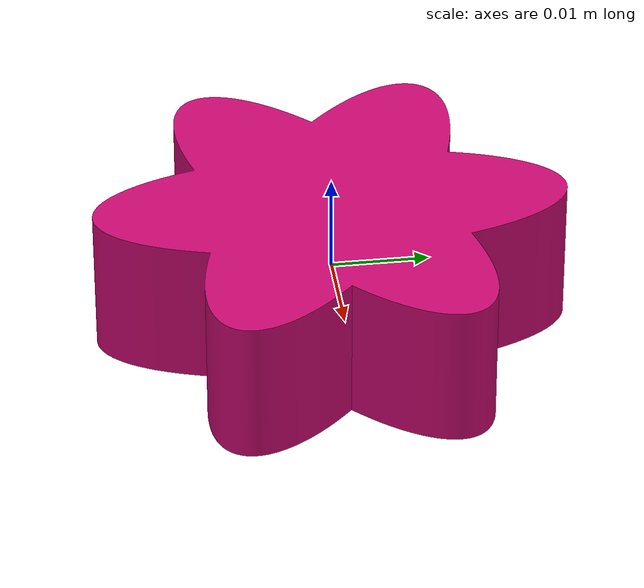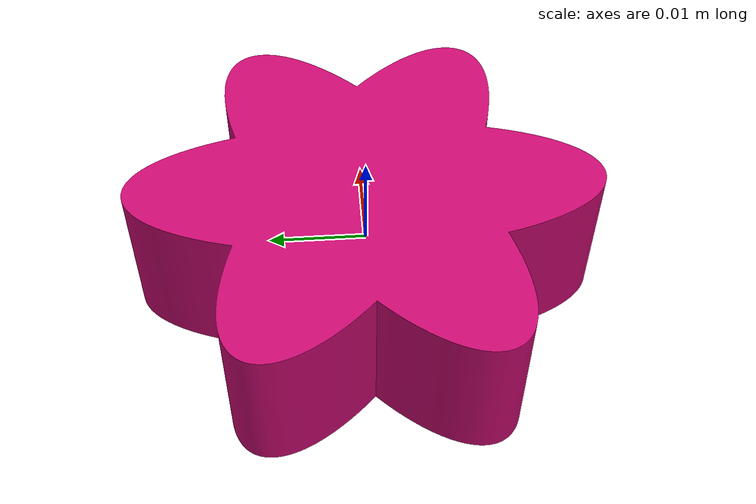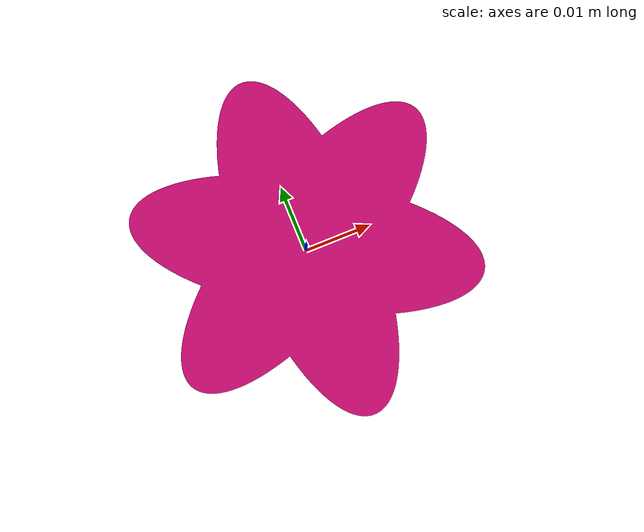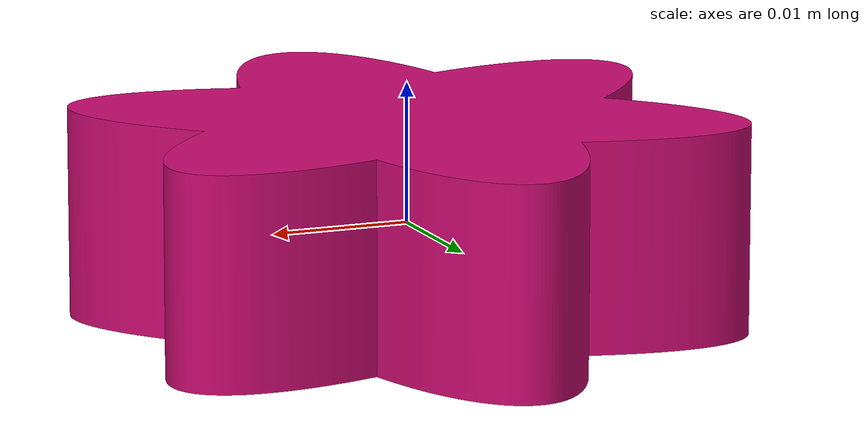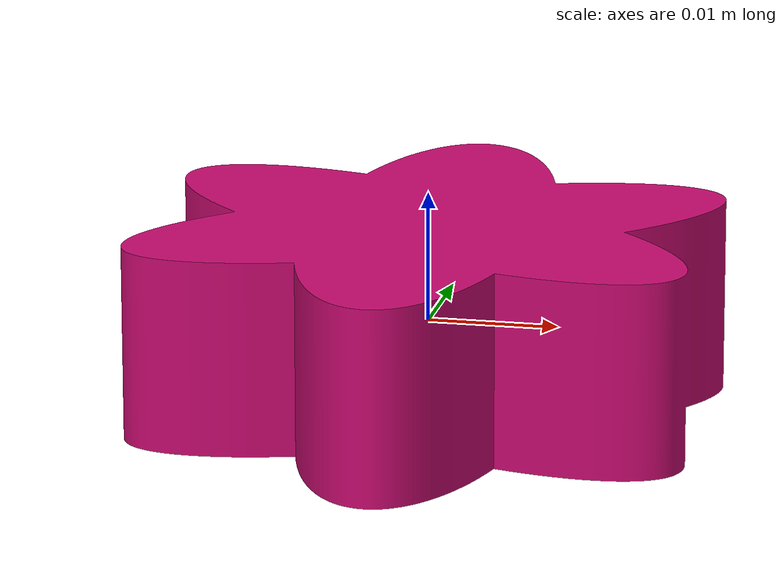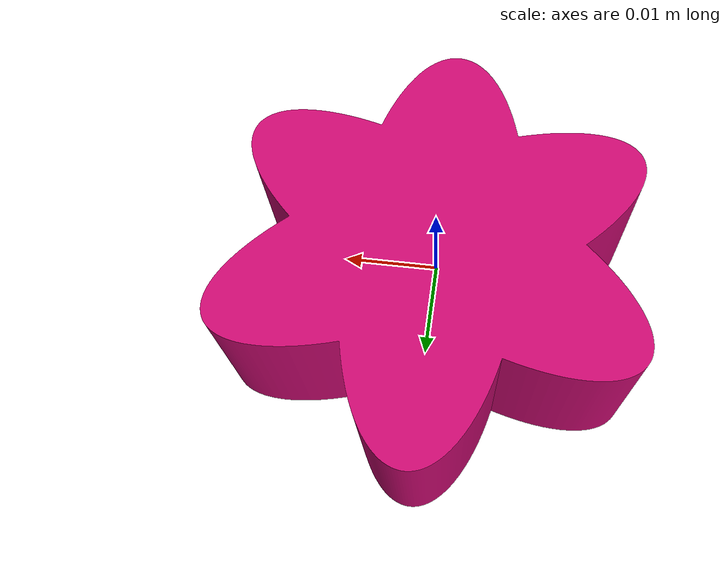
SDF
<?xml version="1.0" ?>
<sdf version="1.5">
  <model name="fleur_rose">
    <static>false</static>
    <link name="link">
      <pose>0 0 0 0 0 0</pose>
      <collision name="collision">
        <geometry>
          <mesh>
            <uri>model://fleur_rose/meshes/fleur_rose.dae</uri>
          </mesh>
        </geometry>
      </collision>
      <visual name="visual">
        <geometry>
          <mesh>
            <uri>model://fleur_rose/meshes/fleur_rose.dae</uri>
          </mesh>
        </geometry>
        <material>

        </material>
      </visual>
      <inertial>
        <mass>0.015</mass>
        <inertia> <!-- inertias are tricky to compute -->
          <!-- http://gazebosim.org/tutorials?tut=inertia&cat=build_robot -->
          <ixx>1.9e-6</ixx>       <!-- for a box: ixx = 0.083 * mass * (y*y + z*z) -->
          <ixy>0.0</ixy>         <!-- for a box: ixy = 0 -->
          <ixz>0.0</ixz>         <!-- for a box: ixz = 0 -->
          <iyy>1.9e-6</iyy>       <!-- for a box: iyy = 0.083 * mass * (x*x + z*z) -->
          <iyz>0.0</iyz>         <!-- for a box: iyz = 0 -->
          <izz>3.3e-6</izz>       <!-- for a box: izz = 0.083 * mass * (x*x + y*y) -->
        </inertia>
      </inertial>
    </link>
  </model>
</sdf>
